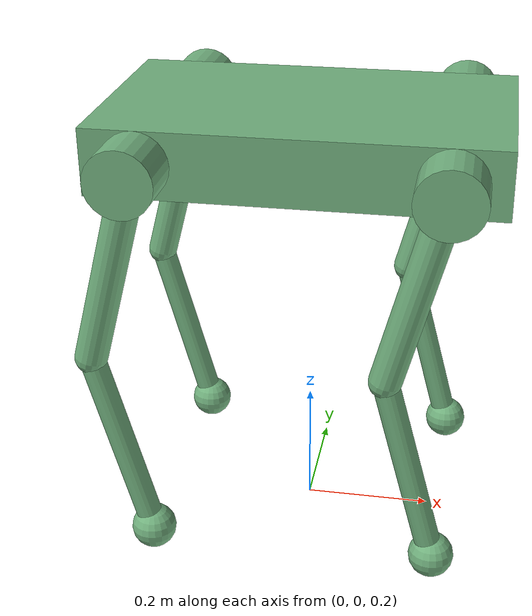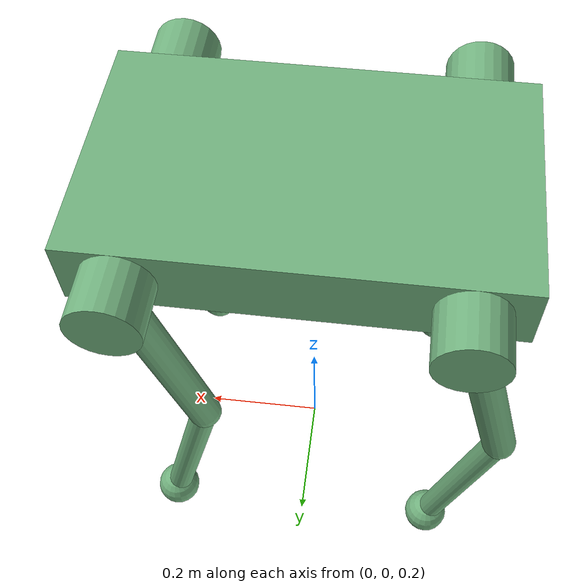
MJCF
<mujoco model="green_quadruped">
  <default>
    <geom rgba="0.45 0.7 0.5 1" density="1000" friction="1 0.005 0.0001"/>
    <joint damping="1.0" armature="0.01" limited="true"/>
    <motor gear="80"/>
  </default>

  <worldbody>
    <body name="torso" pos="0 0 0.85">
      <camera name="tracking_cam" mode="trackcom" pos="-6 -6 6" xyaxes="1 -1 0 0 1 1"/>
      <freejoint/>
      <geom name="torso_box" type="box" size="0.3 0.18 0.05"/>

      <body name="fl_leg" pos="0.22 0.20 0">
        <joint name="fl_hip" type="hinge" axis="0 1 0" range="-60 60"/>
        <geom name="fl_hip_cyl" type="cylinder" fromto="0 -0.03 0 0 0.06 0" size="0.05"/>
        <geom name="fl_thigh" type="capsule" fromto="0 0 0 -0.08 0 -0.3" size="0.025"/>
        <body name="fl_shin" pos="-0.08 0 -0.3">
          <joint name="fl_knee" type="hinge" axis="0 1 0" range="-120 0"/>
          <geom name="fl_shin_geom" type="capsule" fromto="0 0 0 0.08 0 -0.3" size="0.02"/>
          <geom name="fl_foot" type="sphere" pos="0.08 0 -0.3" size="0.035"/>
          <site name="fl_foot_site" pos="0.08 0 -0.3"/>
        </body>
      </body>

      <body name="fr_leg" pos="0.22 -0.20 0">
        <joint name="fr_hip" type="hinge" axis="0 1 0" range="-60 60"/>
        <geom name="fr_hip_cyl" type="cylinder" fromto="0 0.03 0 0 -0.06 0" size="0.05"/>
        <geom name="fr_thigh" type="capsule" fromto="0 0 0 -0.08 0 -0.3" size="0.025"/>
        <body name="fr_shin" pos="-0.08 0 -0.3">
          <joint name="fr_knee" type="hinge" axis="0 1 0" range="-120 0"/>
          <geom name="fr_shin_geom" type="capsule" fromto="0 0 0 0.08 0 -0.3" size="0.02"/>
          <geom name="fr_foot" type="sphere" pos="0.08 0 -0.3" size="0.035"/>
          <site name="fr_foot_site" pos="0.08 0 -0.3"/>
        </body>
      </body>

      <body name="bl_leg" pos="-0.22 0.20 0">
        <joint name="bl_hip" type="hinge" axis="0 1 0" range="-60 60"/>
        <geom name="bl_hip_cyl" type="cylinder" fromto="0 -0.03 0 0 0.06 0" size="0.05"/>
        <geom name="bl_thigh" type="capsule" fromto="0 0 0 -0.08 0 -0.3" size="0.025"/>
        <body name="bl_shin" pos="-0.08 0 -0.3">
          <joint name="bl_knee" type="hinge" axis="0 1 0" range="-120 0"/>
          <geom name="bl_shin_geom" type="capsule" fromto="0 0 0 0.08 0 -0.3" size="0.02"/>
          <geom name="bl_foot" type="sphere" pos="0.08 0 -0.3" size="0.035"/>
          <site name="bl_foot_site" pos="0.08 0 -0.3"/>
        </body>
      </body>

      <body name="br_leg" pos="-0.22 -0.20 0">
        <joint name="br_hip" type="hinge" axis="0 1 0" range="-60 60"/>
        <geom name="br_hip_cyl" type="cylinder" fromto="0 0.03 0 0 -0.06 0" size="0.05"/>
        <geom name="br_thigh" type="capsule" fromto="0 0 0 -0.08 0 -0.3" size="0.025"/>
        <body name="br_shin" pos="-0.08 0 -0.3">
          <joint name="br_knee" type="hinge" axis="0 1 0" range="-120 0"/>
          <geom name="br_shin_geom" type="capsule" fromto="0 0 0 0.08 0 -0.3" size="0.02"/>
          <geom name="br_foot" type="sphere" pos="0.08 0 -0.3" size="0.035"/>
          <site name="br_foot_site" pos="0.08 0 -0.3"/>
        </body>
      </body>
    </body>
  </worldbody>

  <actuator>
    <motor joint="fl_hip" gear="80"/>
    <motor joint="fl_knee" gear="80"/>
    <motor joint="fr_hip" gear="80"/>
    <motor joint="fr_knee" gear="80"/>
    <motor joint="bl_hip" gear="80"/>
    <motor joint="bl_knee" gear="80"/>
    <motor joint="br_hip" gear="80"/>
    <motor joint="br_knee" gear="80"/>
  </actuator>
</mujoco>
